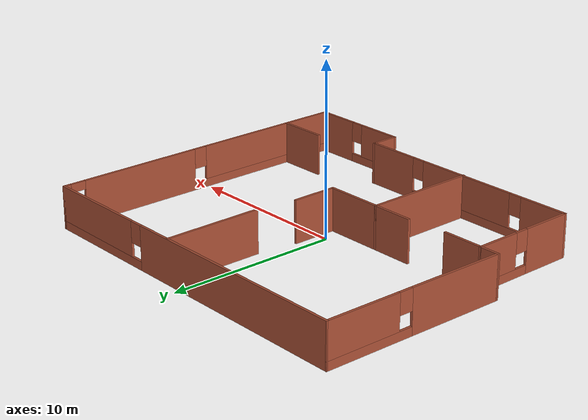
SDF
<?xml version='1.0'?>
<sdf version='1.6'>
  <model name='model_house2'>
    <pose frame=''>-0.306793 0.189051 0 0 -0 0</pose>
    <link name='Wall_0'>
      <pose frame=''>0.100682 9.42432 0 0 -0 0</pose>
      <visual name='Wall_0_Visual_0'>
        <pose frame=''>-3.59388 0 1.25 0 -0 0</pose>
        <geometry>
          <box>
            <size>14.0622 0.15 2.5</size>
          </box>
        </geometry>
        <material>
          <script>
            <uri>file://media/materials/scripts/gazebo.material</uri>
            <name>Gazebo/Bricks</name>
          </script>
          <ambient>1 1 1 1</ambient>
        </material>
      </visual>
      <collision name='Wall_0_Collision_0'>
        <geometry>
          <box>
            <size>14.0622 0.15 2.5</size>
          </box>
        </geometry>
        <pose frame=''>-3.59388 0 1.25 0 -0 0</pose>
      </collision>
      <visual name='Wall_0_Visual_1'>
        <pose frame=''>7.03112 0 0.25 0 -0 0</pose>
        <geometry>
          <box>
            <size>7.18776 0.15 0.5</size>
          </box>
        </geometry>
        <material>
          <script>
            <uri>file://media/materials/scripts/gazebo.material</uri>
            <name>Gazebo/Bricks</name>
          </script>
          <ambient>1 1 1 1</ambient>
        </material>
      </visual>
      <collision name='Wall_0_Collision_1'>
        <geometry>
          <box>
            <size>7.18776 0.15 0.5</size>
          </box>
        </geometry>
        <pose frame=''>7.03112 0 0.25 0 -0 0</pose>
      </collision>
      <visual name='Wall_0_Visual_2'>
        <pose frame=''>7.43112 0 1.5 0 -0 0</pose>
        <geometry>
          <box>
            <size>6.38776 0.15 2</size>
          </box>
        </geometry>
        <material>
          <script>
            <uri>file://media/materials/scripts/gazebo.material</uri>
            <name>Gazebo/Bricks</name>
          </script>
          <ambient>1 1 1 1</ambient>
        </material>
      </visual>
      <collision name='Wall_0_Collision_2'>
        <geometry>
          <box>
            <size>6.38776 0.15 2</size>
          </box>
        </geometry>
        <pose frame=''>7.43112 0 1.5 0 -0 0</pose>
      </collision>
      <visual name='Wall_0_Visual_3'>
        <pose frame=''>3.83724 0 1.9 0 -0 0</pose>
        <geometry>
          <box>
            <size>0.8 0.15 1.2</size>
          </box>
        </geometry>
        <material>
          <script>
            <uri>file://media/materials/scripts/gazebo.material</uri>
            <name>Gazebo/Bricks</name>
          </script>
          <ambient>1 1 1 1</ambient>
        </material>
      </visual>
      <collision name='Wall_0_Collision_3'>
        <geometry>
          <box>
            <size>0.8 0.15 1.2</size>
          </box>
        </geometry>
        <pose frame=''>3.83724 0 1.9 0 -0 0</pose>
      </collision>
    </link>
    <link name='Wall_1'>
      <pose frame=''>10.6507 -0.000681 0 0 0 -1.5708</pose>
      <visual name='Wall_1_Visual_0'>
        <pose frame=''>-9.27115 0 1.25 0 -0 0</pose>
        <geometry>
          <box>
            <size>0.457701 0.15 2.5</size>
          </box>
        </geometry>
        <material>
          <script>
            <uri>file://media/materials/scripts/gazebo.material</uri>
            <name>Gazebo/Bricks</name>
          </script>
          <ambient>1 1 1 1</ambient>
        </material>
      </visual>
      <collision name='Wall_1_Collision_0'>
        <geometry>
          <box>
            <size>0.457701 0.15 2.5</size>
          </box>
        </geometry>
        <pose frame=''>-9.27115 0 1.25 0 -0 0</pose>
      </collision>
      <visual name='Wall_1_Visual_1'>
        <pose frame=''>-4.42241 0 1.25 0 -0 0</pose>
        <geometry>
          <box>
            <size>7.43977 0.15 2.5</size>
          </box>
        </geometry>
        <material>
          <script>
            <uri>file://media/materials/scripts/gazebo.material</uri>
            <name>Gazebo/Bricks</name>
          </script>
          <ambient>1 1 1 1</ambient>
        </material>
      </visual>
      <collision name='Wall_1_Collision_1'>
        <geometry>
          <box>
            <size>7.43977 0.15 2.5</size>
          </box>
        </geometry>
        <pose frame=''>-4.42241 0 1.25 0 -0 0</pose>
      </collision>
      <visual name='Wall_1_Visual_2'>
        <pose frame=''>4.39874 0 0.25 0 -0 0</pose>
        <geometry>
          <box>
            <size>10.2025 0.15 0.5</size>
          </box>
        </geometry>
        <material>
          <script>
            <uri>file://media/materials/scripts/gazebo.material</uri>
            <name>Gazebo/Bricks</name>
          </script>
          <ambient>1 1 1 1</ambient>
        </material>
      </visual>
      <collision name='Wall_1_Collision_2'>
        <geometry>
          <box>
            <size>10.2025 0.15 0.5</size>
          </box>
        </geometry>
        <pose frame=''>4.39874 0 0.25 0 -0 0</pose>
      </collision>
      <visual name='Wall_1_Visual_3'>
        <pose frame=''>4.79874 0 1.5 0 -0 0</pose>
        <geometry>
          <box>
            <size>9.40253 0.15 2</size>
          </box>
        </geometry>
        <material>
          <script>
            <uri>file://media/materials/scripts/gazebo.material</uri>
            <name>Gazebo/Bricks</name>
          </script>
          <ambient>1 1 1 1</ambient>
        </material>
      </visual>
      <collision name='Wall_1_Collision_3'>
        <geometry>
          <box>
            <size>9.40253 0.15 2</size>
          </box>
        </geometry>
        <pose frame=''>4.79874 0 1.5 0 -0 0</pose>
      </collision>
      <visual name='Wall_1_Visual_4'>
        <pose frame=''>-0.302527 0 1.9 0 -0 0</pose>
        <geometry>
          <box>
            <size>0.8 0.15 1.2</size>
          </box>
        </geometry>
        <material>
          <script>
            <uri>file://media/materials/scripts/gazebo.material</uri>
            <name>Gazebo/Bricks</name>
          </script>
          <ambient>1 1 1 1</ambient>
        </material>
      </visual>
      <collision name='Wall_1_Collision_4'>
        <geometry>
          <box>
            <size>0.8 0.15 1.2</size>
          </box>
        </geometry>
        <pose frame=''>-0.302527 0 1.9 0 -0 0</pose>
      </collision>
      <visual name='Wall_1_Visual_5'>
        <pose frame=''>-8.5923 0 2.25 0 -0 0</pose>
        <geometry>
          <box>
            <size>0.9 0.15 0.5</size>
          </box>
        </geometry>
        <material>
          <script>
            <uri>file://media/materials/scripts/gazebo.material</uri>
            <name>Gazebo/Bricks</name>
          </script>
          <ambient>1 1 1 1</ambient>
        </material>
      </visual>
      <collision name='Wall_1_Collision_5'>
        <geometry>
          <box>
            <size>0.9 0.15 0.5</size>
          </box>
        </geometry>
        <pose frame=''>-8.5923 0 2.25 0 -0 0</pose>
      </collision>
    </link>
    <link name='Wall_10'>
      <collision name='Wall_10_Collision'>
        <geometry>
          <box>
            <size>3.5 0.15 2.5</size>
          </box>
        </geometry>
        <pose frame=''>0 0 1.25 0 -0 0</pose>
      </collision>
      <visual name='Wall_10_Visual'>
        <pose frame=''>0 0 1.25 0 -0 0</pose>
        <geometry>
          <box>
            <size>3.5 0.15 2.5</size>
          </box>
        </geometry>
        <material>
          <script>
            <uri>file://media/materials/scripts/gazebo.material</uri>
            <name>Gazebo/Bricks</name>
          </script>
          <ambient>1 1 1 1</ambient>
        </material>
      </visual>
      <pose frame=''>-0.724867 -1.27738 0 0 -0 0</pose>
    </link>
    <link name='Wall_11'>
      <collision name='Wall_11_Collision'>
        <geometry>
          <box>
            <size>2.75 0.15 2.5</size>
          </box>
        </geometry>
        <pose frame=''>0 0 1.25 0 -0 0</pose>
      </collision>
      <visual name='Wall_11_Visual'>
        <pose frame=''>0 0 1.25 0 -0 0</pose>
        <geometry>
          <box>
            <size>2.75 0.15 2.5</size>
          </box>
        </geometry>
        <material>
          <script>
            <uri>file://media/materials/scripts/gazebo.material</uri>
            <name>Gazebo/Bricks</name>
          </script>
          <ambient>1 1 1 1</ambient>
        </material>
      </visual>
      <pose frame=''>0.950133 0.022624 0 0 -0 1.5708</pose>
    </link>
    <link name='Wall_13'>
      <collision name='Wall_13_Collision'>
        <geometry>
          <box>
            <size>2.5 0.15 2.5</size>
          </box>
        </geometry>
        <pose frame=''>0 0 1.25 0 -0 0</pose>
      </collision>
      <visual name='Wall_13_Visual'>
        <pose frame=''>0 0 1.25 0 -0 0</pose>
        <geometry>
          <box>
            <size>2.5 0.15 2.5</size>
          </box>
        </geometry>
        <material>
          <script>
            <uri>file://media/materials/scripts/gazebo.material</uri>
            <name>Gazebo/Bricks</name>
          </script>
          <ambient>1 1 1 1</ambient>
        </material>
      </visual>
      <pose frame=''>-3.57487 -1.27738 0 0 -0 3.14159</pose>
    </link>
    <link name='Wall_15'>
      <collision name='Wall_15_Collision'>
        <geometry>
          <box>
            <size>2.5 0.15 2.5</size>
          </box>
        </geometry>
        <pose frame=''>0 0 1.25 0 -0 0</pose>
      </collision>
      <visual name='Wall_15_Visual'>
        <pose frame=''>0 0 1.25 0 -0 0</pose>
        <geometry>
          <box>
            <size>2.5 0.15 2.5</size>
          </box>
        </geometry>
        <material>
          <script>
            <uri>file://media/materials/scripts/gazebo.material</uri>
            <name>Gazebo/Bricks</name>
          </script>
          <ambient>1 1 1 1</ambient>
        </material>
      </visual>
      <pose frame=''>-8.37432 -1.47568 0 0 -0 0</pose>
    </link>
    <link name='Wall_17'>
      <collision name='Wall_17_Collision'>
        <geometry>
          <box>
            <size>3 0.15 2.5</size>
          </box>
        </geometry>
        <pose frame=''>0 0 1.25 0 -0 0</pose>
      </collision>
      <visual name='Wall_17_Visual'>
        <pose frame=''>0 0 1.25 0 -0 0</pose>
        <geometry>
          <box>
            <size>3 0.15 2.5</size>
          </box>
        </geometry>
        <material>
          <script>
            <uri>file://media/materials/scripts/gazebo.material</uri>
            <name>Gazebo/Bricks</name>
          </script>
          <ambient>1 1 1 1</ambient>
        </material>
      </visual>
      <pose frame=''>9.2208 -6.3045 0 0 -0 3.14159</pose>
    </link>
    <link name='Wall_19'>
      <collision name='Wall_19_Collision'>
        <geometry>
          <box>
            <size>5.75 0.15 2.5</size>
          </box>
        </geometry>
        <pose frame=''>0 0 1.25 0 -0 0</pose>
      </collision>
      <visual name='Wall_19_Visual'>
        <pose frame=''>0 0 1.25 0 -0 0</pose>
        <geometry>
          <box>
            <size>5.75 0.15 2.5</size>
          </box>
        </geometry>
        <material>
          <script>
            <uri>file://media/materials/scripts/gazebo.material</uri>
            <name>Gazebo/Bricks</name>
          </script>
          <ambient>1 1 1 1</ambient>
        </material>
      </visual>
      <pose frame=''>1.30103 6.57806 0 0 0 -1.5708</pose>
    </link>
    <link name='Wall_2'>
      <pose frame=''>7.60068 -9.42568 0 0 -0 3.14159</pose>
      <visual name='Wall_2_Visual_0'>
        <pose frame=''>-1.80742 0 1.25 0 -0 0</pose>
        <geometry>
          <box>
            <size>2.63516 0.15 2.5</size>
          </box>
        </geometry>
        <material>
          <script>
            <uri>file://media/materials/scripts/gazebo.material</uri>
            <name>Gazebo/Bricks</name>
          </script>
          <ambient>1 1 1 1</ambient>
        </material>
      </visual>
      <collision name='Wall_2_Collision_0'>
        <geometry>
          <box>
            <size>2.63516 0.15 2.5</size>
          </box>
        </geometry>
        <pose frame=''>-1.80742 0 1.25 0 -0 0</pose>
      </collision>
      <visual name='Wall_2_Visual_1'>
        <pose frame=''>1.31758 0 0.25 0 -0 0</pose>
        <geometry>
          <box>
            <size>3.61484 0.15 0.5</size>
          </box>
        </geometry>
        <material>
          <script>
            <uri>file://media/materials/scripts/gazebo.material</uri>
            <name>Gazebo/Bricks</name>
          </script>
          <ambient>1 1 1 1</ambient>
        </material>
      </visual>
      <collision name='Wall_2_Collision_1'>
        <geometry>
          <box>
            <size>3.61484 0.15 0.5</size>
          </box>
        </geometry>
        <pose frame=''>1.31758 0 0.25 0 -0 0</pose>
      </collision>
      <visual name='Wall_2_Visual_2'>
        <pose frame=''>1.71758 0 1.5 0 -0 0</pose>
        <geometry>
          <box>
            <size>2.81484 0.15 2</size>
          </box>
        </geometry>
        <material>
          <script>
            <uri>file://media/materials/scripts/gazebo.material</uri>
            <name>Gazebo/Bricks</name>
          </script>
          <ambient>1 1 1 1</ambient>
        </material>
      </visual>
      <collision name='Wall_2_Collision_2'>
        <geometry>
          <box>
            <size>2.81484 0.15 2</size>
          </box>
        </geometry>
        <pose frame=''>1.71758 0 1.5 0 -0 0</pose>
      </collision>
      <visual name='Wall_2_Visual_3'>
        <pose frame=''>-0.089836 0 1.9 0 -0 0</pose>
        <geometry>
          <box>
            <size>0.8 0.15 1.2</size>
          </box>
        </geometry>
        <material>
          <script>
            <uri>file://media/materials/scripts/gazebo.material</uri>
            <name>Gazebo/Bricks</name>
          </script>
          <ambient>1 1 1 1</ambient>
        </material>
      </visual>
      <collision name='Wall_2_Collision_3'>
        <geometry>
          <box>
            <size>0.8 0.15 1.2</size>
          </box>
        </geometry>
        <pose frame=''>-0.089836 0 1.9 0 -0 0</pose>
      </collision>
    </link>
    <link name='Wall_3'>
      <collision name='Wall_3_Collision'>
        <geometry>
          <box>
            <size>1.75 0.15 2.5</size>
          </box>
        </geometry>
        <pose frame=''>0 0 1.25 0 -0 0</pose>
      </collision>
      <visual name='Wall_3_Visual'>
        <pose frame=''>0 0 1.25 0 -0 0</pose>
        <geometry>
          <box>
            <size>1.75 0.15 2.5</size>
          </box>
        </geometry>
        <material>
          <script>
            <uri>file://media/materials/scripts/gazebo.material</uri>
            <name>Gazebo/Bricks</name>
          </script>
          <ambient>1 1 1 1</ambient>
        </material>
      </visual>
      <pose frame=''>4.55068 -8.62568 0 0 -0 1.5708</pose>
    </link>
    <link name='Wall_4'>
      <pose frame=''>-2.49932 -7.82568 0 0 -0 3.14159</pose>
      <visual name='Wall_4_Visual_0'>
        <pose frame=''>-5.47919 0 1.25 0 -0 0</pose>
        <geometry>
          <box>
            <size>3.29162 0.15 2.5</size>
          </box>
        </geometry>
        <material>
          <script>
            <uri>file://media/materials/scripts/gazebo.material</uri>
            <name>Gazebo/Bricks</name>
          </script>
          <ambient>1 1 1 1</ambient>
        </material>
      </visual>
      <collision name='Wall_4_Collision_0'>
        <geometry>
          <box>
            <size>3.29162 0.15 2.5</size>
          </box>
        </geometry>
        <pose frame=''>-5.47919 0 1.25 0 -0 0</pose>
      </collision>
      <visual name='Wall_4_Visual_1'>
        <pose frame=''>1.64581 0 0.25 0 -0 0</pose>
        <geometry>
          <box>
            <size>10.9584 0.15 0.5</size>
          </box>
        </geometry>
        <material>
          <script>
            <uri>file://media/materials/scripts/gazebo.material</uri>
            <name>Gazebo/Bricks</name>
          </script>
          <ambient>1 1 1 1</ambient>
        </material>
      </visual>
      <collision name='Wall_4_Collision_1'>
        <geometry>
          <box>
            <size>10.9584 0.15 0.5</size>
          </box>
        </geometry>
        <pose frame=''>1.64581 0 0.25 0 -0 0</pose>
      </collision>
      <visual name='Wall_4_Visual_2'>
        <pose frame=''>0.157642 0 1.5 0 -0 0</pose>
        <geometry>
          <box>
            <size>6.38205 0.15 2</size>
          </box>
        </geometry>
        <material>
          <script>
            <uri>file://media/materials/scripts/gazebo.material</uri>
            <name>Gazebo/Bricks</name>
          </script>
          <ambient>1 1 1 1</ambient>
        </material>
      </visual>
      <collision name='Wall_4_Collision_2'>
        <geometry>
          <box>
            <size>6.38205 0.15 2</size>
          </box>
        </geometry>
        <pose frame=''>0.157642 0 1.5 0 -0 0</pose>
      </collision>
      <visual name='Wall_4_Visual_3'>
        <pose frame=''>5.63683 0 1.5 0 -0 0</pose>
        <geometry>
          <box>
            <size>2.97633 0.15 2</size>
          </box>
        </geometry>
        <material>
          <script>
            <uri>file://media/materials/scripts/gazebo.material</uri>
            <name>Gazebo/Bricks</name>
          </script>
          <ambient>1 1 1 1</ambient>
        </material>
      </visual>
      <collision name='Wall_4_Collision_3'>
        <geometry>
          <box>
            <size>2.97633 0.15 2</size>
          </box>
        </geometry>
        <pose frame=''>5.63683 0 1.5 0 -0 0</pose>
      </collision>
      <visual name='Wall_4_Visual_4'>
        <pose frame=''>-3.43338 0 1.9 0 -0 0</pose>
        <geometry>
          <box>
            <size>0.8 0.15 1.2</size>
          </box>
        </geometry>
        <material>
          <script>
            <uri>file://media/materials/scripts/gazebo.material</uri>
            <name>Gazebo/Bricks</name>
          </script>
          <ambient>1 1 1 1</ambient>
        </material>
      </visual>
      <collision name='Wall_4_Collision_4'>
        <geometry>
          <box>
            <size>0.8 0.15 1.2</size>
          </box>
        </geometry>
        <pose frame=''>-3.43338 0 1.9 0 -0 0</pose>
      </collision>
      <visual name='Wall_4_Visual_5'>
        <pose frame=''>3.74867 0 1.9 0 -0 0</pose>
        <geometry>
          <box>
            <size>0.8 0.15 1.2</size>
          </box>
        </geometry>
        <material>
          <script>
            <uri>file://media/materials/scripts/gazebo.material</uri>
            <name>Gazebo/Bricks</name>
          </script>
          <ambient>1 1 1 1</ambient>
        </material>
      </visual>
      <collision name='Wall_4_Collision_5'>
        <geometry>
          <box>
            <size>0.8 0.15 1.2</size>
          </box>
        </geometry>
        <pose frame=''>3.74867 0 1.9 0 -0 0</pose>
      </collision>
    </link>
    <link name='Wall_5'>
      <pose frame=''>-9.54932 -4.65068 0 0 -0 1.5708</pose>
      <visual name='Wall_5_Visual_0'>
        <pose frame=''>-1.72668 0 1.25 0 -0 0</pose>
        <geometry>
          <box>
            <size>3.04664 0.15 2.5</size>
          </box>
        </geometry>
        <material>
          <script>
            <uri>file://media/materials/scripts/gazebo.material</uri>
            <name>Gazebo/Bricks</name>
          </script>
          <ambient>1 1 1 1</ambient>
        </material>
      </visual>
      <collision name='Wall_5_Collision_0'>
        <geometry>
          <box>
            <size>3.04664 0.15 2.5</size>
          </box>
        </geometry>
        <pose frame=''>-1.72668 0 1.25 0 -0 0</pose>
      </collision>
      <visual name='Wall_5_Visual_1'>
        <pose frame=''>1.52332 0 0.25 0 -0 0</pose>
        <geometry>
          <box>
            <size>3.45336 0.15 0.5</size>
          </box>
        </geometry>
        <material>
          <script>
            <uri>file://media/materials/scripts/gazebo.material</uri>
            <name>Gazebo/Bricks</name>
          </script>
          <ambient>1 1 1 1</ambient>
        </material>
      </visual>
      <collision name='Wall_5_Collision_1'>
        <geometry>
          <box>
            <size>3.45336 0.15 0.5</size>
          </box>
        </geometry>
        <pose frame=''>1.52332 0 0.25 0 -0 0</pose>
      </collision>
      <visual name='Wall_5_Visual_2'>
        <pose frame=''>1.92332 0 1.5 0 -0 0</pose>
        <geometry>
          <box>
            <size>2.65336 0.15 2</size>
          </box>
        </geometry>
        <material>
          <script>
            <uri>file://media/materials/scripts/gazebo.material</uri>
            <name>Gazebo/Bricks</name>
          </script>
          <ambient>1 1 1 1</ambient>
        </material>
      </visual>
      <collision name='Wall_5_Collision_2'>
        <geometry>
          <box>
            <size>2.65336 0.15 2</size>
          </box>
        </geometry>
        <pose frame=''>1.92332 0 1.5 0 -0 0</pose>
      </collision>
      <visual name='Wall_5_Visual_3'>
        <pose frame=''>0.196635 0 1.9 0 -0 0</pose>
        <geometry>
          <box>
            <size>0.8 0.15 1.2</size>
          </box>
        </geometry>
        <material>
          <script>
            <uri>file://media/materials/scripts/gazebo.material</uri>
            <name>Gazebo/Bricks</name>
          </script>
          <ambient>1 1 1 1</ambient>
        </material>
      </visual>
      <collision name='Wall_5_Collision_3'>
        <geometry>
          <box>
            <size>0.8 0.15 1.2</size>
          </box>
        </geometry>
        <pose frame=''>0.196635 0 1.9 0 -0 0</pose>
      </collision>
    </link>
    <link name='Wall_6'>
      <collision name='Wall_6_Collision'>
        <geometry>
          <box>
            <size>1.25 0.15 2.5</size>
          </box>
        </geometry>
        <pose frame=''>0 0 1.25 0 -0 0</pose>
      </collision>
      <visual name='Wall_6_Visual'>
        <pose frame=''>0 0 1.25 0 -0 0</pose>
        <geometry>
          <box>
            <size>1.25 0.15 2.5</size>
          </box>
        </geometry>
        <material>
          <script>
            <uri>file://media/materials/scripts/gazebo.material</uri>
            <name>Gazebo/Bricks</name>
          </script>
          <ambient>1 1 1 1</ambient>
        </material>
      </visual>
      <pose frame=''>-10.0993 -1.47568 0 0 -0 3.14159</pose>
    </link>
    <link name='Wall_7'>
      <pose frame=''>-10.5493 3.97432 0 0 -0 1.55245</pose>
      <visual name='Wall_7_Visual_0'>
        <pose frame=''>-2.6204 0 1.25 0 -0 0</pose>
        <geometry>
          <box>
            <size>5.81103 0.15 2.5</size>
          </box>
        </geometry>
        <material>
          <script>
            <uri>file://media/materials/scripts/gazebo.material</uri>
            <name>Gazebo/Bricks</name>
          </script>
          <ambient>1 1 1 1</ambient>
        </material>
      </visual>
      <collision name='Wall_7_Collision_0'>
        <geometry>
          <box>
            <size>5.81103 0.15 2.5</size>
          </box>
        </geometry>
        <pose frame=''>-2.6204 0 1.25 0 -0 0</pose>
      </collision>
      <visual name='Wall_7_Visual_1'>
        <pose frame=''>2.90552 0 0.25 0 -0 0</pose>
        <geometry>
          <box>
            <size>5.2408 0.15 0.5</size>
          </box>
        </geometry>
        <material>
          <script>
            <uri>file://media/materials/scripts/gazebo.material</uri>
            <name>Gazebo/Bricks</name>
          </script>
          <ambient>1 1 1 1</ambient>
        </material>
      </visual>
      <collision name='Wall_7_Collision_1'>
        <geometry>
          <box>
            <size>5.2408 0.15 0.5</size>
          </box>
        </geometry>
        <pose frame=''>2.90552 0 0.25 0 -0 0</pose>
      </collision>
      <visual name='Wall_7_Visual_2'>
        <pose frame=''>3.30552 0 1.5 0 -0 0</pose>
        <geometry>
          <box>
            <size>4.4408 0.15 2</size>
          </box>
        </geometry>
        <material>
          <script>
            <uri>file://media/materials/scripts/gazebo.material</uri>
            <name>Gazebo/Bricks</name>
          </script>
          <ambient>1 1 1 1</ambient>
        </material>
      </visual>
      <collision name='Wall_7_Collision_2'>
        <geometry>
          <box>
            <size>4.4408 0.15 2</size>
          </box>
        </geometry>
        <pose frame=''>3.30552 0 1.5 0 -0 0</pose>
      </collision>
      <visual name='Wall_7_Visual_3'>
        <pose frame=''>0.685117 0 1.9 0 -0 0</pose>
        <geometry>
          <box>
            <size>0.8 0.15 1.2</size>
          </box>
        </geometry>
        <material>
          <script>
            <uri>file://media/materials/scripts/gazebo.material</uri>
            <name>Gazebo/Bricks</name>
          </script>
          <ambient>1 1 1 1</ambient>
        </material>
      </visual>
      <collision name='Wall_7_Collision_3'>
        <geometry>
          <box>
            <size>0.8 0.15 1.2</size>
          </box>
        </geometry>
        <pose frame=''>0.685117 0 1.9 0 -0 0</pose>
      </collision>
    </link>
    <link name='Wall_9'>
      <collision name='Wall_9_Collision'>
        <geometry>
          <box>
            <size>6.75 0.15 2.5</size>
          </box>
        </geometry>
        <pose frame=''>0 0 1.25 0 -0 0</pose>
      </collision>
      <visual name='Wall_9_Visual'>
        <pose frame=''>0 0 1.25 0 -0 0</pose>
        <geometry>
          <box>
            <size>6.75 0.15 2.5</size>
          </box>
        </geometry>
        <material>
          <script>
            <uri>file://media/materials/scripts/gazebo.material</uri>
            <name>Gazebo/Bricks</name>
          </script>
          <ambient>1 1 1 1</ambient>
        </material>
      </visual>
      <pose frame=''>-2.39987 -4.57738 0 0 -0 1.5708</pose>
    </link>
    <link name='Window_1'>
      <collision name='Window_1_Collision'>
        <geometry>
          <box>
            <size>0.8 0.17 0.8</size>
          </box>
        </geometry>
        <pose frame=''>0 0 0.4 0 -0 0</pose>
      </collision>
      <visual name='Window_1_Visual'>
        <pose frame=''>0 0 0.4 0 -0 0</pose>
        <geometry>
          <box>
            <size>0.8 0.17 0.8</size>
          </box>
        </geometry>
        <material>
          <script>
            <uri>file://media/materials/scripts/gazebo.material</uri>
            <name>Gazebo/Grey</name>
          </script>
        </material>
      </visual>
      <pose frame=''>-5.96198 9.3318 0.5 0 -0 0</pose>
    </link>
    <static>1</static>
  </model>
</sdf>
